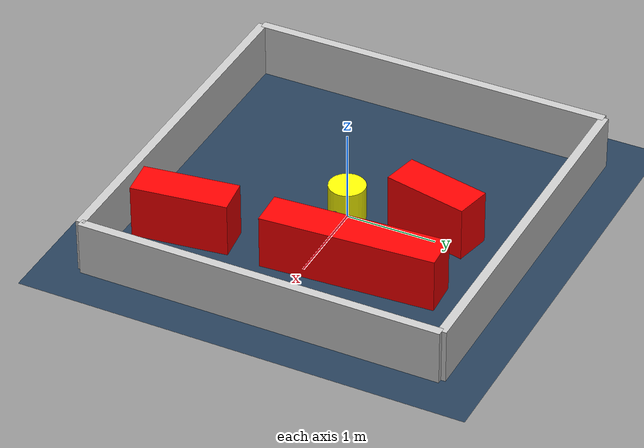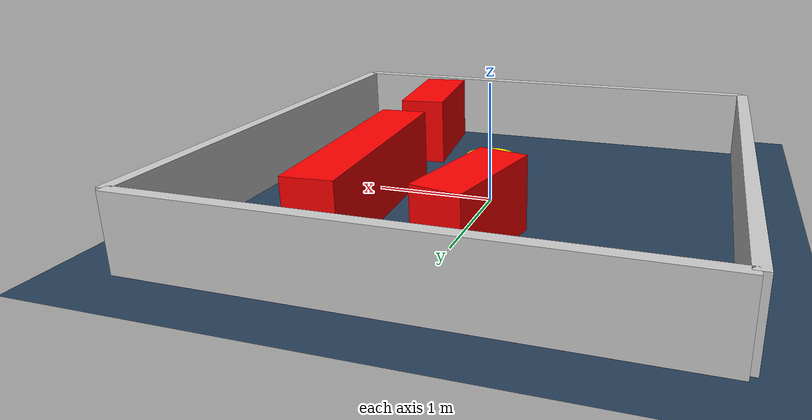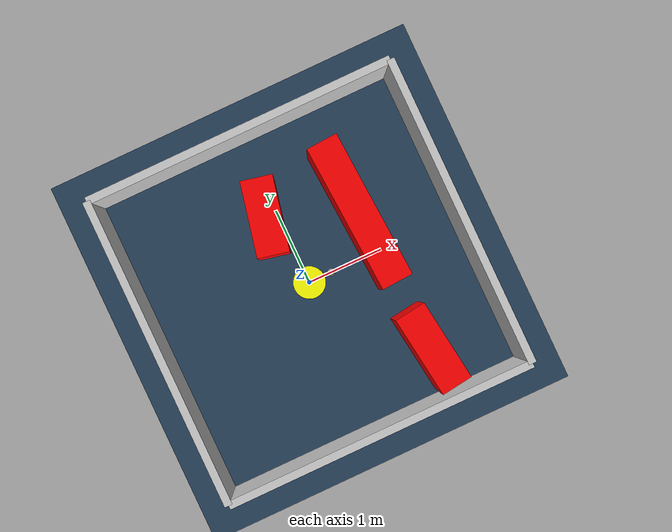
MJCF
<?xml version="1.0" ?>
<mujoco model="generated_environment">
  <option timestep="0.01" integrator="RK4" cone="elliptic"/>
  <default>
    <geom density="1"/>
  </default>
  <asset>
    <texture builtin="gradient" height="3072" rgb1="0.3 0.5 0.7" rgb2="0 0 0" type="skybox" width="512"/>
    <texture builtin="checker" height="300" mark="edge" markrgb="0.8 0.8 0.8" name="groundplane" rgb1="0.2 0.3 0.4" rgb2="0.1 0.2 0.3" type="2d" width="300"/>
    <material name="groundplane" reflectance="0.2" texrepeat="5 5" texture="groundplane" texuniform="true"/>
    <material name="robot" rgba="0.0 1.0 0.0 1"/>
  </asset>
  <worldbody>
    <light dir="0 0 -1" directional="true" pos="0 0 1.5"/>
    <geom condim="4" friction="1.0 0.005 0.001" material="groundplane" name="floor" size="0 0 0.05" type="plane"/>
    <body name="walls">
      <geom name="wall_1" condim="4" pos="-2.0 0.0 0.3" rgba="0.800000011920929 0.800000011920929 0.800000011920929 1.0" size="0.05 2.0 0.3" type="box"/>
      <geom name="wall_2" condim="4" pos="2.0 0.0 0.3" rgba="0.800000011920929 0.800000011920929 0.800000011920929 1.0" size="0.05 2.0 0.3" type="box"/>
      <geom name="wall_3" condim="4" pos="0.0 -2.0 0.3" rgba="0.800000011920929 0.800000011920929 0.800000011920929 1.0" size="2.0 0.05 0.3" type="box"/>
      <geom name="wall_4" condim="4" pos="0.0 2.0 0.3" rgba="0.800000011920929 0.800000011920929 0.800000011920929 1.0" size="2.0 0.05 0.3" type="box"/>
    </body>
    <body name="robot">
      <joint name="joint_x" type="slide" pos="0 0 0" axis="1 0 0"/>
      <joint name="joint_y" type="slide" pos="0 0 0" axis="0 1 0"/>
      <geom name="robot" type="sphere" pos="0.3 0.0 0.2" size="0.05" mass="5." friction="1.0 0.005 0.0001" condim="4" rgba="0.5 0.5 0.5 1.0"/>
      <site name="sensor_ball"/>
    </body>
    <body name="obstacle_movable_1">
      <geom name="obstacle_movable_1" condim="4" pos="0.0 0.0 0.2" euler="0 0 0.0" friction="1.0 0.005 0.001" rgba="1.0 1.0 0.0 1.0" size="0.2 0.2 0.0" type="cylinder" mass="0.1"/>
      <joint type="free"/>
    </body>
    <body name="obstacle_2_static">
      <geom name="obstacle_2_static" condim="4" pos="0.898533868445389 0.5117335612186584 0.3" euler="0 0 273.3813444899965" friction="1.0 0.005 0.001" rgba="1 0 0 1" size="0.9504776538609114 0.2 0.3" type="box"/>
    </body>
    <body name="obstacle_3_static">
      <geom name="obstacle_3_static" condim="4" pos="-0.14939240482717486 0.9383849109876194 0.3" euler="0 0 77.65631327892987" friction="1.0 0.005 0.001" rgba="1 0 0 1" size="0.4724013611171738 0.2 0.3" type="box"/>
    </body>
    <body name="obstacle_4_static">
      <geom name="obstacle_4_static" condim="4" pos="1.0038909111843044 -1.3418638461798438 0.3" euler="0 0 97.46930296873455" friction="1.0 0.005 0.001" rgba="1 0 0 1" size="0.5236465554409178 0.2 0.3" type="box"/>
    </body>
  </worldbody>
  <actuator>
    <motor name="actuator_x" joint="joint_x" gear="1" ctrlrange="-1 1"/>
    <motor name="actuator_y" joint="joint_y" gear="1" ctrlrange="-1 1"/>
  </actuator>
</mujoco>
